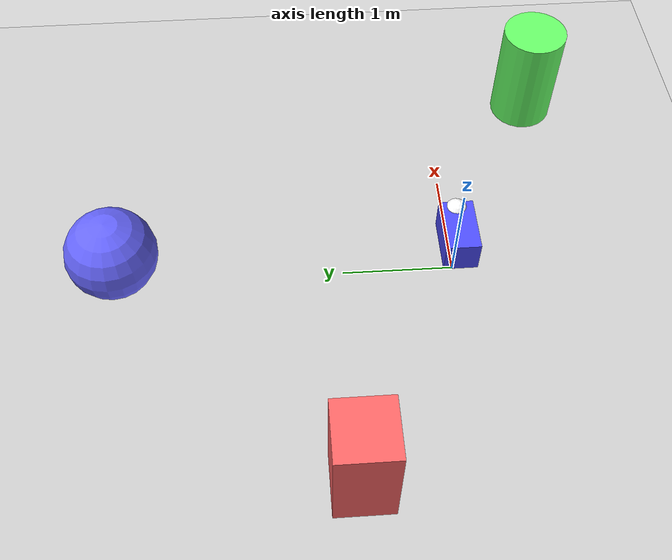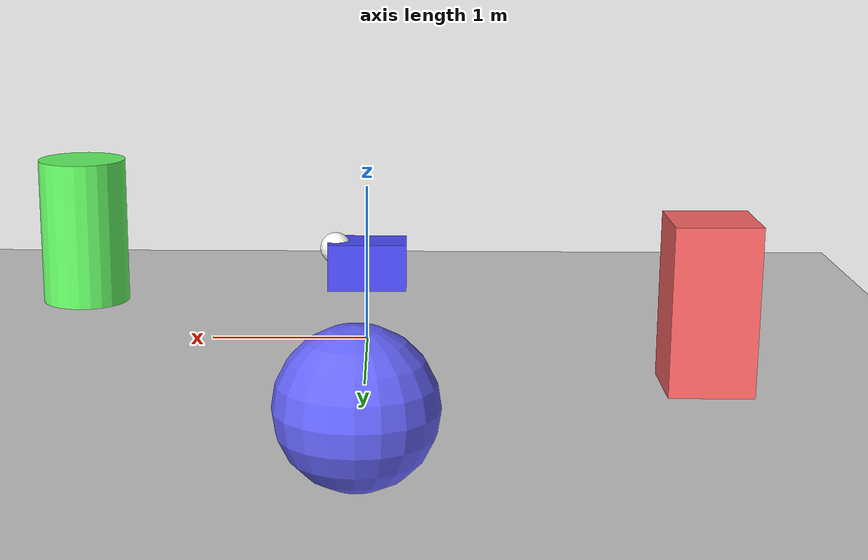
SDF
<?xml version="1.0" ?>
<sdf version="1.7">
  <world name="fusion_test_world">
    <!-- Include standard Gazebo components -->
    <include>
      <uri>model://ground_plane</uri>
    </include>

    <include>
      <uri>model://sun</uri>
    </include>

    <!-- Robot with multiple sensors for fusion testing -->
    <model name="fusion_test_robot">
      <pose>0 0 0.5 0 0 0</pose>

      <!-- Robot base -->
      <link name="base_link">
        <inertial>
          <mass>10.0</mass>
          <inertia>
            <ixx>0.1</ixx>
            <ixy>0.0</ixy>
            <ixz>0.0</ixz>
            <iyy>0.1</iyy>
            <iyz>0.0</iyz>
            <izz>0.1</izz>
          </inertia>
        </inertial>

        <visual name="base_visual">
          <geometry>
            <box>
              <size>0.5 0.3 0.3</size>
            </box>
          </geometry>
          <material>
            <ambient>0.2 0.2 0.8 1.0</ambient>
            <diffuse>0.3 0.3 1.0 1.0</diffuse>
          </material>
        </visual>

        <collision name="base_collision">
          <geometry>
            <box>
              <size>0.5 0.3 0.3</size>
            </box>
          </geometry>
        </collision>
      </link>

      <!-- Head with sensor suite -->
      <link name="head">
        <pose>0.2 0 0.1 0 0 0</pose>
        <inertial>
          <mass>2.0</mass>
          <inertia>
            <ixx>0.01</ixx>
            <ixy>0.0</ixy>
            <ixz>0.0</ixz>
            <iyy>0.01</iyy>
            <iyz>0.0</iyz>
            <izz>0.01</izz>
          </inertia>
        </inertial>

        <visual name="head_visual">
          <geometry>
            <sphere>
              <radius>0.1</radius>
            </sphere>
          </geometry>
          <material>
            <ambient>0.8 0.8 0.8 1.0</ambient>
            <diffuse>1.0 1.0 1.0 1.0</diffuse>
          </material>
        </visual>

        <collision name="head_collision">
          <geometry>
            <sphere>
              <radius>0.1</radius>
            </sphere>
          </geometry>
        </collision>
      </link>

      <joint name="head_joint" type="fixed">
        <parent>base_link</parent>
        <child>head</child>
        <pose>0.2 0 0.1 0 0 0</pose>
      </joint>

      <!-- Camera Mount -->
      <link name="camera_mount">
        <pose>0.25 0 0.1 0 0 0</pose>
        <inertial>
          <mass>0.1</mass>
          <inertia>
            <ixx>0.0001</ixx>
            <ixy>0.0</ixy>
            <ixz>0.0</ixz>
            <iyy>0.0001</iyy>
            <iyz>0.0</iyz>
            <izz>0.0001</izz>
          </inertia>
        </inertial>
      </link>

      <joint name="camera_mount_joint" type="fixed">
        <parent>head</parent>
        <child>camera_mount</child>
        <pose>0.05 0 0 0 0 0</pose>
      </joint>

      <!-- IMU Mount -->
      <link name="imu_mount">
        <pose>0.2 0 0.15 0 0 0</pose>
        <inertial>
          <mass>0.05</mass>
          <inertia>
            <ixx>0.00001</ixx>
            <ixy>0.0</ixy>
            <ixz>0.0</ixz>
            <iyy>0.00001</iyy>
            <iyz>0.0</iyz>
            <izz>0.00001</izz>
          </inertia>
        </inertial>
      </link>

      <joint name="imu_mount_joint" type="fixed">
        <parent>head</parent>
        <child>imu_mount</child>
        <pose>0 0 0.05 0 0 0</pose>
      </joint>

      <!-- LiDAR Mount -->
      <link name="lidar_mount">
        <pose>0.3 0 0.1 0 0 0</pose>
        <inertial>
          <mass>0.5</mass>
          <inertia>
            <ixx>0.001</ixx>
            <ixy>0.0</ixy>
            <ixz>0.0</ixz>
            <iyy>0.001</iyy>
            <iyz>0.0</iyz>
            <izz>0.001</izz>
          </inertia>
        </inertial>
      </link>

      <joint name="lidar_mount_joint" type="fixed">
        <parent>head</parent>
        <child>lidar_mount</child>
        <pose>0.1 0 0 0 0 0</pose>
      </joint>

      <!-- RGB Camera Sensor -->
      <gazebo reference="camera_mount">
        <sensor name="rgb_camera" type="camera">
          <pose>0 0 0 0 0 0</pose>
          <camera name="head_camera">
            <horizontal_fov>1.047</horizontal_fov> <!-- 60 degrees -->
            <image>
              <width>640</width>
              <height>480</height>
              <format>R8G8B8</format>
            </image>
            <clip>
              <near>0.1</near>
              <far>10.0</far>
            </clip>
            <noise>
              <type>gaussian</type>
              <mean>0.0</mean>
              <stddev>0.007</stddev>
            </noise>
          </camera>
          <plugin name="camera_controller" filename="libgazebo_ros_camera.so">
            <ros>
              <namespace>camera</namespace>
              <remapping>~/image_raw:=image</remapping>
              <remapping>~/camera_info:=camera_info</remapping>
            </ros>
            <camera_name>rgb_camera</camera_name>
            <image_topic_name>image</image_topic_name>
            <camera_info_topic_name>camera_info</camera_info_topic_name>
            <frame_name>camera_mount</frame_name>
            <update_rate>30</update_rate>
          </plugin>
        </sensor>
      </gazebo>

      <!-- Depth Camera Sensor -->
      <gazebo reference="camera_mount">
        <sensor name="depth_camera" type="depth">
          <pose>0.01 0 0 0 0 0</pose>
          <camera name="head_depth_camera">
            <horizontal_fov>1.047</horizontal_fov> <!-- 60 degrees -->
            <image>
              <width>640</width>
              <height>480</height>
              <format>R8G8B8</format>
            </image>
            <clip>
              <near>0.1</near>
              <far>10.0</far>
            </clip>
            <noise>
              <type>gaussian</type>
              <mean>0.0</mean>
              <stddev>0.01</stddev>
            </noise>
          </camera>
          <plugin name="depth_camera_controller" filename="libgazebo_ros_openni_kinect.so">
            <ros>
              <namespace>depth_camera</namespace>
              <remapping>~/rgb/image_raw:=rgb/image</remapping>
              <remapping>~/depth/image_raw:=depth/image</remapping>
              <remapping>~/rgb/camera_info:=rgb/camera_info</remapping>
            </ros>
            <camera_name>depth_camera</camera_name>
            <image_topic_name>rgb/image</image_topic_name>
            <depth_image_topic_name>depth/image</depth_image_topic_name>
            <point_cloud_topic_name>points</point_cloud_topic_name>
            <frame_name>camera_mount</frame_name>
            <update_rate>30</update_rate>
          </plugin>
        </sensor>
      </gazebo>

      <!-- IMU Sensor -->
      <gazebo reference="imu_mount">
        <sensor name="imu_sensor" type="imu">
          <always_on>true</always_on>
          <update_rate>100</update_rate>
          <pose>0 0 0 0 0 0</pose>
          <imu>
            <angular_velocity>
              <x>
                <noise type="gaussian">
                  <mean>0.0</mean>
                  <stddev>0.02</stddev>
                  <bias_mean>0.0</bias_mean>
                  <bias_stddev>0.005</bias_stddev>
                </noise>
              </x>
              <y>
                <noise type="gaussian">
                  <mean>0.0</mean>
                  <stddev>0.02</stddev>
                  <bias_mean>0.0</bias_mean>
                  <bias_stddev>0.005</bias_stddev>
                </noise>
              </y>
              <z>
                <noise type="gaussian">
                  <mean>0.0</mean>
                  <stddev>0.02</stddev>
                  <bias_mean>0.0</bias_mean>
                  <bias_stddev>0.005</bias_stddev>
                </noise>
              </z>
            </angular_velocity>
            <linear_acceleration>
              <x>
                <noise type="gaussian">
                  <mean>0.0</mean>
                  <stddev>1.7e-2</stddev>
                  <bias_mean>0.0</bias_mean>
                  <bias_stddev>0.5e-3</bias_stddev>
                </noise>
              </x>
              <y>
                <noise type="gaussian">
                  <mean>0.0</mean>
                  <stddev>1.7e-2</stddev>
                  <bias_mean>0.0</bias_mean>
                  <bias_stddev>0.5e-3</bias_stddev>
                </noise>
              </y>
              <z>
                <noise type="gaussian">
                  <mean>0.0</mean>
                  <stddev>1.7e-2</stddev>
                  <bias_mean>0.0</bias_mean>
                  <bias_stddev>0.5e-3</bias_stddev>
                </noise>
              </z>
            </linear_acceleration>
          </imu>
          <plugin name="imu_controller" filename="libgazebo_ros_imu.so">
            <ros>
              <namespace>imu</namespace>
              <remapping>~/out:=data</remapping>
            </ros>
            <frame_name>imu_mount</frame_name>
            <topic>data</topic>
            <update_rate>100</update_rate>
          </plugin>
        </sensor>
      </gazebo>

      <!-- 2D LiDAR Sensor -->
      <gazebo reference="lidar_mount">
        <sensor name="lidar_2d" type="ray">
          <pose>0 0 0 0 0 0</pose>
          <ray>
            <scan>
              <horizontal>
                <samples>720</samples>
                <resolution>1.0</resolution>
                <min_angle>-3.14159</min_angle> <!-- -π radians -->
                <max_angle>3.14159</max_angle>  <!-- π radians -->
              </horizontal>
            </scan>
            <range>
              <min>0.1</min>
              <max>30.0</max>
              <resolution>0.01</resolution>
            </range>
          </ray>
          <plugin name="lidar_2d_controller" filename="libgazebo_ros_laser.so">
            <ros>
              <namespace>lidar_2d</namespace>
              <remapping>~/out:=scan</remapping>
            </ros>
            <output_type>sensor_msgs/LaserScan</output_type>
            <frame_name>lidar_mount</frame_name>
            <topic>scan</topic>
            <update_rate>10</update_rate>
          </plugin>
        </sensor>
      </gazebo>

      <!-- Additional 3D LiDAR Sensor -->
      <gazebo reference="lidar_mount">
        <sensor name="lidar_3d" type="ray">
          <pose>0.01 0 0 0 0 0</pose>
          <ray>
            <scan>
              <horizontal>
                <samples>1080</samples>
                <resolution>1.0</resolution>
                <min_angle>-3.14159</min_angle>
                <max_angle>3.14159</max_angle>
              </horizontal>
              <vertical>
                <samples>16</samples>
                <resolution>0.2618</resolution> <!-- 15 degrees between beams -->
                <min_angle>-0.2618</min_angle>  <!-- -15 degrees -->
                <max_angle>0.2618</max_angle>   <!-- 15 degrees -->
              </vertical>
            </scan>
            <range>
              <min>0.1</min>
              <max>100.0</max>
              <resolution>0.01</resolution>
            </range>
          </ray>
          <plugin name="lidar_3d_controller" filename="libgazebo_ros_velodyne_gpu_laser.so">
            <ros>
              <namespace>lidar_3d</namespace>
              <remapping>~/out:=points</remapping>
            </ros>
            <output_type>sensor_msgs/PointCloud2</output_type>
            <frame_name>lidar_mount</frame_name>
            <topic>points</topic>
            <update_rate>10</update_rate>
          </plugin>
        </sensor>
      </gazebo>
    </model>

    <!-- Simple environment for fusion testing -->
    <model name="test_obstacle_1">
      <pose>-2 1 0.5 0 0 0</pose>
      <link name="link">
        <inertial>
          <mass>1.0</mass>
          <inertia>
            <ixx>0.1</ixx>
            <ixy>0.0</ixy>
            <ixz>0.0</ixz>
            <iyy>0.1</iyy>
            <iyz>0.0</iyz>
            <izz>0.1</izz>
          </inertia>
        </inertial>
        <visual name="visual">
          <geometry>
            <box>
              <size>0.5 0.5 1.0</size>
            </box>
          </geometry>
          <material>
            <ambient>0.8 0.3 0.3 1.0</ambient>
            <diffuse>1.0 0.4 0.4 1.0</diffuse>
          </material>
        </visual>
        <collision name="collision">
          <geometry>
            <box>
              <size>0.5 0.5 1.0</size>
            </box>
          </geometry>
        </collision>
      </link>
    </model>

    <model name="test_obstacle_2">
      <pose>2 -1 0.5 0 0 0</pose>
      <link name="link">
        <inertial>
          <mass>1.0</mass>
          <inertia>
            <ixx>0.1</ixx>
            <ixy>0.0</ixy>
            <ixz>0.0</ixz>
            <iyy>0.1</iyy>
            <iyz>0.0</iyz>
            <izz>0.1</izz>
          </inertia>
        </inertial>
        <visual name="visual">
          <geometry>
            <cylinder>
              <radius>0.3</radius>
              <length>1.0</length>
            </cylinder>
          </geometry>
          <material>
            <ambient>0.3 0.8 0.3 1.0</ambient>
            <diffuse>0.4 1.0 0.4 1.0</diffuse>
          </material>
        </visual>
        <collision name="collision">
          <geometry>
            <cylinder>
              <radius>0.3</radius>
              <length>1.0</length>
            </cylinder>
          </geometry>
        </collision>
      </link>
    </model>

    <model name="test_obstacle_3">
      <pose>0 3 0.5 0 0 0</pose>
      <link name="link">
        <inertial>
          <mass>1.0</mass>
          <inertia>
            <ixx>0.1</ixx>
            <ixy>0.0</ixy>
            <ixz>0.0</ixz>
            <iyy>0.1</iyy>
            <iyz>0.0</iyz>
            <izz>0.1</izz>
          </inertia>
        </inertial>
        <visual name="visual">
          <geometry>
            <sphere>
              <radius>0.4</radius>
            </sphere>
          </geometry>
          <material>
            <ambient>0.3 0.3 0.8 1.0</ambient>
            <diffuse>0.4 0.4 1.0 1.0</diffuse>
          </material>
        </visual>
        <collision name="collision">
          <geometry>
            <sphere>
              <radius>0.4</radius>
            </sphere>
          </geometry>
        </collision>
      </link>
    </model>
  </world>
</sdf>
